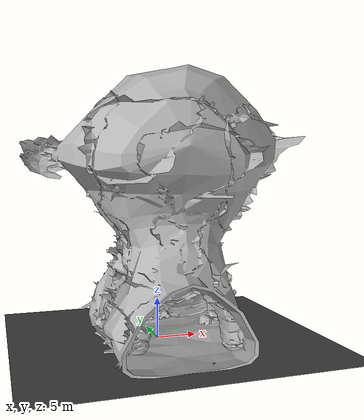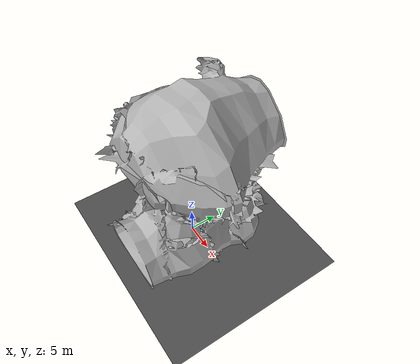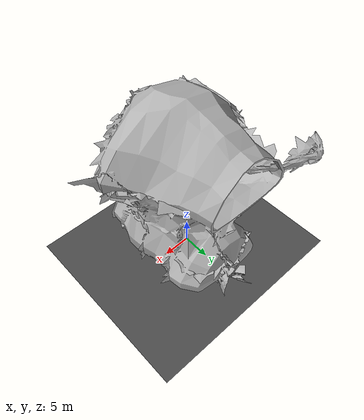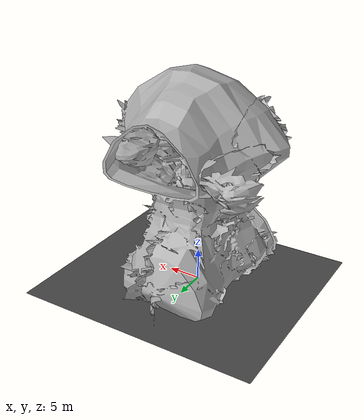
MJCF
<?xml version="1.0"?>
<mujoco model="vertical_shaft">
  <compiler meshdir="vertical_shaft.xml.assets" angle="radian" autolimits="true"/>
  <option timestep="0.002" gravity="0 0 -9.81"/>
  <default>
    <geom rgba="0.7 0.7 0.7 1" condim="3" friction="1.0 0.05 0.0001"/>
  </default>
  <asset>
    <texture type="skybox" builtin="gradient" rgb1="0.4 0.6 0.8" rgb2="0 0 0" width="256" height="256"/>
    <mesh name="Cave_Vertical_Shaft_link_0" file="Cave_Vertical_Shaft_link_0.stl" refpos="0 0 0" refquat="1 0 0 0"/>
  </asset>
  <worldbody>
    <light pos="0 0 30" directional="true"/>
    <geom name="ground" type="plane" size="100 100 0.1" rgba="0.3 0.3 0.3 1"/>
    <body name="Cave_Vertical_Shaft" pos="0.0000 0.0000 0.0000" quat="1.000000 0.000000 0.000000 0.000000">
      <geom type="mesh" mesh="Cave_Vertical_Shaft_link_0" pos="0.0000 0.0000 0.0000" quat="1.000000 0.000000 0.000000 0.000000"/>
    </body>
    <!-- Spawn your Go2 / Go2W include below.  Default Z=0.5 -->
  </worldbody>
</mujoco>
